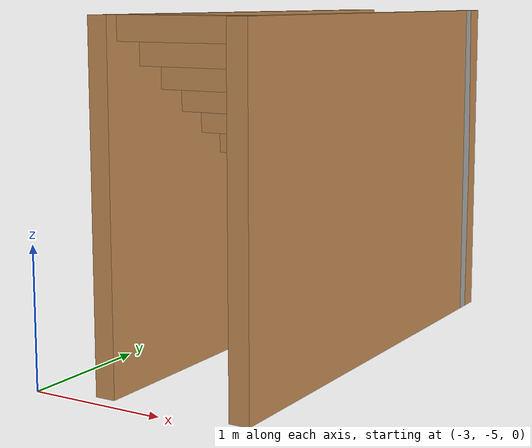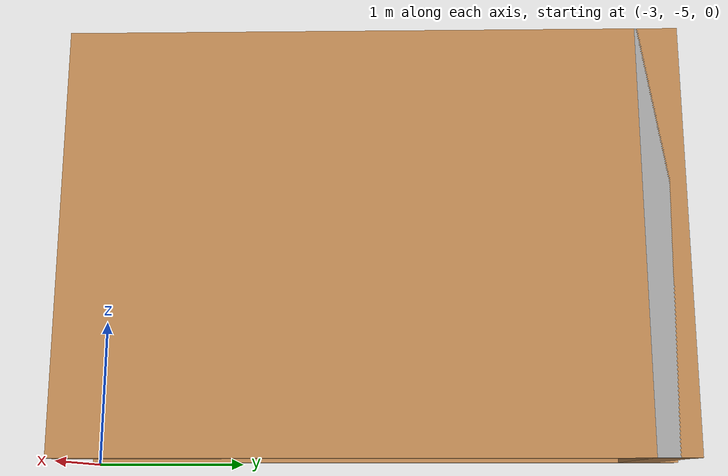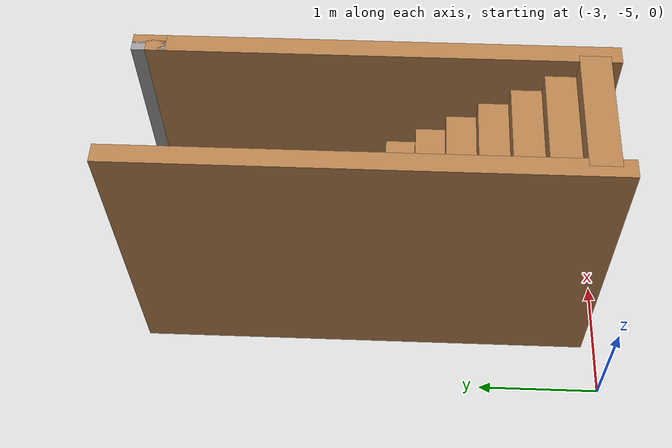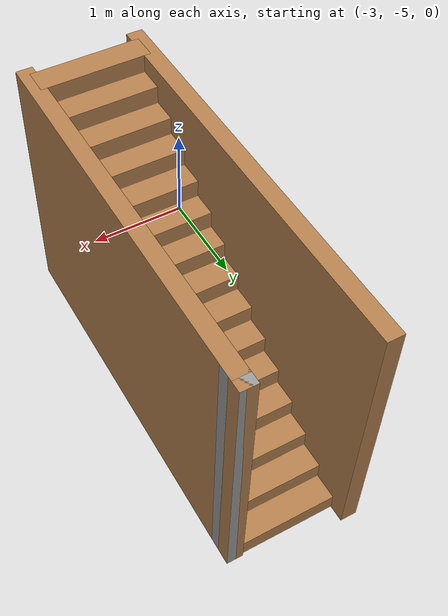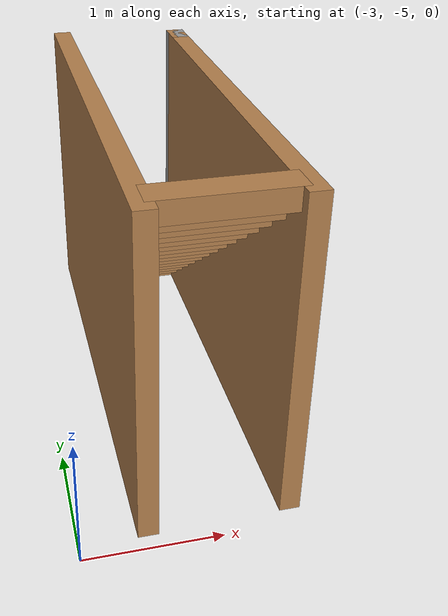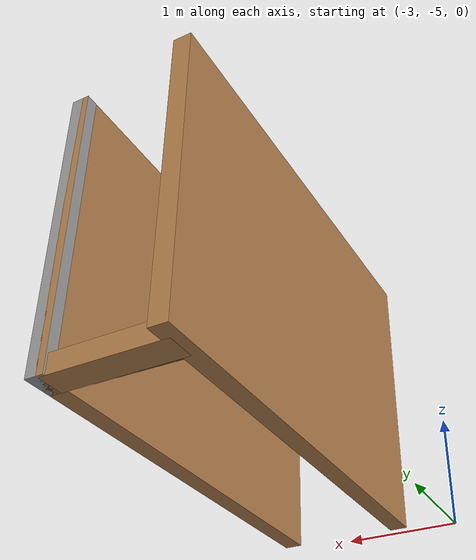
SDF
<?xml version='1.0'?>
<sdf version='1.6'>
  <model name='stairs'>
    <pose frame=''>-1.99778 -3.01611 0 0 -0 0</pose>
    <link name='Stairs_0'>
      <visual name='Stairs_0_Visual_0'>
        <pose frame=''>-0.00222 1.60945 0.083333 0 -0 0</pose>
        <geometry>
          <box>
            <size>1 0.233333 0.166667</size>
          </box>
        </geometry>
        <material>
          <script>
            <uri>file://media/materials/scripts/gazebo.material</uri>
            <name>Gazebo/Wood</name>
          </script>
          <ambient>1 1 1 1</ambient>
        </material>
        <meta>
          <layer>0</layer>
        </meta>
      </visual>
      <collision name='Stairs_0_Collision_0'>
        <geometry>
          <box>
            <size>1 0.233333 0.166667</size>
          </box>
        </geometry>
        <pose frame=''>-0.00222 1.60945 0.083333 0 -0 0</pose>
      </collision>
      <visual name='Stairs_0_Visual_1'>
        <pose frame=''>-0.00222 1.37611 0.25 0 -0 0</pose>
        <geometry>
          <box>
            <size>1 0.233333 0.166667</size>
          </box>
        </geometry>
        <material>
          <script>
            <uri>file://media/materials/scripts/gazebo.material</uri>
            <name>Gazebo/Wood</name>
          </script>
          <ambient>1 1 1 1</ambient>
        </material>
        <meta>
          <layer>0</layer>
        </meta>
      </visual>
      <collision name='Stairs_0_Collision_1'>
        <geometry>
          <box>
            <size>1 0.233333 0.166667</size>
          </box>
        </geometry>
        <pose frame=''>-0.00222 1.37611 0.25 0 -0 0</pose>
      </collision>
      <visual name='Stairs_0_Visual_2'>
        <pose frame=''>-0.00222 1.14278 0.416667 0 -0 0</pose>
        <geometry>
          <box>
            <size>1 0.233333 0.166667</size>
          </box>
        </geometry>
        <material>
          <script>
            <uri>file://media/materials/scripts/gazebo.material</uri>
            <name>Gazebo/Wood</name>
          </script>
          <ambient>1 1 1 1</ambient>
        </material>
        <meta>
          <layer>0</layer>
        </meta>
      </visual>
      <collision name='Stairs_0_Collision_2'>
        <geometry>
          <box>
            <size>1 0.233333 0.166667</size>
          </box>
        </geometry>
        <pose frame=''>-0.00222 1.14278 0.416667 0 -0 0</pose>
      </collision>
      <visual name='Stairs_0_Visual_3'>
        <pose frame=''>-0.00222 0.909445 0.583333 0 -0 0</pose>
        <geometry>
          <box>
            <size>1 0.233333 0.166667</size>
          </box>
        </geometry>
        <material>
          <script>
            <uri>file://media/materials/scripts/gazebo.material</uri>
            <name>Gazebo/Wood</name>
          </script>
          <ambient>1 1 1 1</ambient>
        </material>
        <meta>
          <layer>0</layer>
        </meta>
      </visual>
      <collision name='Stairs_0_Collision_3'>
        <geometry>
          <box>
            <size>1 0.233333 0.166667</size>
          </box>
        </geometry>
        <pose frame=''>-0.00222 0.909445 0.583333 0 -0 0</pose>
      </collision>
      <visual name='Stairs_0_Visual_4'>
        <pose frame=''>-0.00222 0.676112 0.75 0 -0 0</pose>
        <geometry>
          <box>
            <size>1 0.233333 0.166667</size>
          </box>
        </geometry>
        <material>
          <script>
            <uri>file://media/materials/scripts/gazebo.material</uri>
            <name>Gazebo/Wood</name>
          </script>
          <ambient>1 1 1 1</ambient>
        </material>
        <meta>
          <layer>0</layer>
        </meta>
      </visual>
      <collision name='Stairs_0_Collision_4'>
        <geometry>
          <box>
            <size>1 0.233333 0.166667</size>
          </box>
        </geometry>
        <pose frame=''>-0.00222 0.676112 0.75 0 -0 0</pose>
      </collision>
      <visual name='Stairs_0_Visual_5'>
        <pose frame=''>-0.00222 0.442778 0.916667 0 -0 0</pose>
        <geometry>
          <box>
            <size>1 0.233333 0.166667</size>
          </box>
        </geometry>
        <material>
          <script>
            <uri>file://media/materials/scripts/gazebo.material</uri>
            <name>Gazebo/Wood</name>
          </script>
          <ambient>1 1 1 1</ambient>
        </material>
        <meta>
          <layer>0</layer>
        </meta>
      </visual>
      <collision name='Stairs_0_Collision_5'>
        <geometry>
          <box>
            <size>1 0.233333 0.166667</size>
          </box>
        </geometry>
        <pose frame=''>-0.00222 0.442778 0.916667 0 -0 0</pose>
      </collision>
      <visual name='Stairs_0_Visual_6'>
        <pose frame=''>-0.00222 0.209445 1.08333 0 -0 0</pose>
        <geometry>
          <box>
            <size>1 0.233333 0.166667</size>
          </box>
        </geometry>
        <material>
          <script>
            <uri>file://media/materials/scripts/gazebo.material</uri>
            <name>Gazebo/Wood</name>
          </script>
          <ambient>1 1 1 1</ambient>
        </material>
        <meta>
          <layer>0</layer>
        </meta>
      </visual>
      <collision name='Stairs_0_Collision_6'>
        <geometry>
          <box>
            <size>1 0.233333 0.166667</size>
          </box>
        </geometry>
        <pose frame=''>-0.00222 0.209445 1.08333 0 -0 0</pose>
      </collision>
      <visual name='Stairs_0_Visual_7'>
        <pose frame=''>-0.00222 -0.023888 1.25 0 -0 0</pose>
        <geometry>
          <box>
            <size>1 0.233333 0.166667</size>
          </box>
        </geometry>
        <material>
          <script>
            <uri>file://media/materials/scripts/gazebo.material</uri>
            <name>Gazebo/Wood</name>
          </script>
          <ambient>1 1 1 1</ambient>
        </material>
        <meta>
          <layer>0</layer>
        </meta>
      </visual>
      <collision name='Stairs_0_Collision_7'>
        <geometry>
          <box>
            <size>1 0.233333 0.166667</size>
          </box>
        </geometry>
        <pose frame=''>-0.00222 -0.023888 1.25 0 -0 0</pose>
      </collision>
      <visual name='Stairs_0_Visual_8'>
        <pose frame=''>-0.00222 -0.257222 1.41667 0 -0 0</pose>
        <geometry>
          <box>
            <size>1 0.233333 0.166667</size>
          </box>
        </geometry>
        <material>
          <script>
            <uri>file://media/materials/scripts/gazebo.material</uri>
            <name>Gazebo/Wood</name>
          </script>
          <ambient>1 1 1 1</ambient>
        </material>
        <meta>
          <layer>0</layer>
        </meta>
      </visual>
      <collision name='Stairs_0_Collision_8'>
        <geometry>
          <box>
            <size>1 0.233333 0.166667</size>
          </box>
        </geometry>
        <pose frame=''>-0.00222 -0.257222 1.41667 0 -0 0</pose>
      </collision>
      <visual name='Stairs_0_Visual_9'>
        <pose frame=''>-0.00222 -0.490555 1.58333 0 -0 0</pose>
        <geometry>
          <box>
            <size>1 0.233333 0.166667</size>
          </box>
        </geometry>
        <material>
          <script>
            <uri>file://media/materials/scripts/gazebo.material</uri>
            <name>Gazebo/Wood</name>
          </script>
          <ambient>1 1 1 1</ambient>
        </material>
        <meta>
          <layer>0</layer>
        </meta>
      </visual>
      <collision name='Stairs_0_Collision_9'>
        <geometry>
          <box>
            <size>1 0.233333 0.166667</size>
          </box>
        </geometry>
        <pose frame=''>-0.00222 -0.490555 1.58333 0 -0 0</pose>
      </collision>
      <visual name='Stairs_0_Visual_10'>
        <pose frame=''>-0.00222 -0.723888 1.75 0 -0 0</pose>
        <geometry>
          <box>
            <size>1 0.233333 0.166667</size>
          </box>
        </geometry>
        <material>
          <script>
            <uri>file://media/materials/scripts/gazebo.material</uri>
            <name>Gazebo/Wood</name>
          </script>
          <ambient>1 1 1 1</ambient>
        </material>
        <meta>
          <layer>0</layer>
        </meta>
      </visual>
      <collision name='Stairs_0_Collision_10'>
        <geometry>
          <box>
            <size>1 0.233333 0.166667</size>
          </box>
        </geometry>
        <pose frame=''>-0.00222 -0.723888 1.75 0 -0 0</pose>
      </collision>
      <visual name='Stairs_0_Visual_11'>
        <pose frame=''>-0.00222 -0.957222 1.91667 0 -0 0</pose>
        <geometry>
          <box>
            <size>1 0.233333 0.166667</size>
          </box>
        </geometry>
        <material>
          <script>
            <uri>file://media/materials/scripts/gazebo.material</uri>
            <name>Gazebo/Wood</name>
          </script>
          <ambient>1 1 1 1</ambient>
        </material>
        <meta>
          <layer>0</layer>
        </meta>
      </visual>
      <collision name='Stairs_0_Collision_11'>
        <geometry>
          <box>
            <size>1 0.233333 0.166667</size>
          </box>
        </geometry>
        <pose frame=''>-0.00222 -0.957222 1.91667 0 -0 0</pose>
      </collision>
      <visual name='Stairs_0_Visual_12'>
        <pose frame=''>-0.00222 -1.19056 2.08333 0 -0 0</pose>
        <geometry>
          <box>
            <size>1 0.233333 0.166667</size>
          </box>
        </geometry>
        <material>
          <script>
            <uri>file://media/materials/scripts/gazebo.material</uri>
            <name>Gazebo/Wood</name>
          </script>
          <ambient>1 1 1 1</ambient>
        </material>
        <meta>
          <layer>0</layer>
        </meta>
      </visual>
      <collision name='Stairs_0_Collision_12'>
        <geometry>
          <box>
            <size>1 0.233333 0.166667</size>
          </box>
        </geometry>
        <pose frame=''>-0.00222 -1.19056 2.08333 0 -0 0</pose>
      </collision>
      <visual name='Stairs_0_Visual_13'>
        <pose frame=''>-0.00222 -1.42389 2.25 0 -0 0</pose>
        <geometry>
          <box>
            <size>1 0.233333 0.166667</size>
          </box>
        </geometry>
        <material>
          <script>
            <uri>file://media/materials/scripts/gazebo.material</uri>
            <name>Gazebo/Wood</name>
          </script>
          <ambient>1 1 1 1</ambient>
        </material>
        <meta>
          <layer>0</layer>
        </meta>
      </visual>
      <collision name='Stairs_0_Collision_13'>
        <geometry>
          <box>
            <size>1 0.233333 0.166667</size>
          </box>
        </geometry>
        <pose frame=''>-0.00222 -1.42389 2.25 0 -0 0</pose>
      </collision>
      <visual name='Stairs_0_Visual_14'>
        <pose frame=''>-0.00222 -1.65722 2.41667 0 -0 0</pose>
        <geometry>
          <box>
            <size>1 0.233333 0.166667</size>
          </box>
        </geometry>
        <material>
          <script>
            <uri>file://media/materials/scripts/gazebo.material</uri>
            <name>Gazebo/Wood</name>
          </script>
          <ambient>1 1 1 1</ambient>
        </material>
        <meta>
          <layer>0</layer>
        </meta>
      </visual>
      <collision name='Stairs_0_Collision_14'>
        <geometry>
          <box>
            <size>1 0.233333 0.166667</size>
          </box>
        </geometry>
        <pose frame=''>-0.00222 -1.65722 2.41667 0 -0 0</pose>
      </collision>
    </link>
    <link name='Wall_4'>
      <collision name='Wall_4_Collision'>
        <geometry>
          <box>
            <size>3.75 0.15 2.5</size>
          </box>
        </geometry>
        <pose frame=''>0 0 1.25 0 -0 0</pose>
      </collision>
      <visual name='Wall_4_Visual'>
        <pose frame=''>0 0 1.25 0 -0 0</pose>
        <geometry>
          <box>
            <size>3.75 0.15 2.5</size>
          </box>
        </geometry>
        <material>
          <script>
            <uri>file://media/materials/scripts/gazebo.material</uri>
            <name>Gazebo/Wood</name>
          </script>
          <ambient>1 1 1 1</ambient>
        </material>
        <meta>
          <layer>0</layer>
        </meta>
      </visual>
      <pose frame=''>-0.515 0 0 0 -0 1.5708</pose>
    </link>
    <link name='Wall_6'>
      <collision name='Wall_6_Collision'>
        <geometry>
          <box>
            <size>3.5 0.15 2.5</size>
          </box>
        </geometry>
        <pose frame=''>0 0 1.25 0 -0 0</pose>
      </collision>
      <visual name='Wall_6_Visual'>
        <pose frame=''>0 0 1.25 0 -0 0</pose>
        <geometry>
          <box>
            <size>3.5 0.15 2.5</size>
          </box>
        </geometry>
        <material>
          <script>
            <uri>file://media/materials/scripts/gazebo.material</uri>
            <name>Gazebo/Wood</name>
          </script>
          <ambient>1 1 1 1</ambient>
        </material>
        <meta>
          <layer>0</layer>
        </meta>
      </visual>
      <pose frame=''>0.515 -0.105 0 0 -0 1.5708</pose>
    </link>
    <link name='Wall_7'>
      <collision name='Wall_7_Collision'>
        <geometry>
          <box>
            <size>0.25 0.15 2.5</size>
          </box>
        </geometry>
        <pose frame=''>0 0 1.25 0 -0 0</pose>
      </collision>
      <visual name='Wall_7_Visual'>
        <pose frame=''>0 0 1.25 0 -0 0</pose>
        <geometry>
          <box>
            <size>0.25 0.15 2.5</size>
          </box>
        </geometry>
        <material>
          <script>
            <uri>file://media/materials/scripts/gazebo.material</uri>
            <name>Gazebo/Grey</name>
          </script>
          <ambient>1 1 1 1</ambient>
        </material>
        <meta>
          <layer>0</layer>
        </meta>
      </visual>
      <pose frame=''>0.515 1.62 0 0 -0 1.5708</pose>
    </link>
    <link name='Wall_8'>
      <collision name='Wall_8_Collision'>
        <geometry>
          <box>
            <size>0.25 0.15 2.5</size>
          </box>
        </geometry>
        <pose frame=''>0 0 1.25 0 -0 0</pose>
      </collision>
      <visual name='Wall_8_Visual'>
        <pose frame=''>0 0 1.25 0 -0 0</pose>
        <geometry>
          <box>
            <size>0.25 0.15 2.5</size>
          </box>
        </geometry>
        <material>
          <script>
            <uri>file://media/materials/scripts/gazebo.material</uri>
            <name>Gazebo/Wood</name>
          </script>
          <ambient>0.996078 0.47451 0.0196078 1</ambient>
        </material>
        <meta>
          <layer>0</layer>
        </meta>
      </visual>
      <pose frame=''>0.515 1.62 0 0 -0 -1.5708</pose>
    </link>
    <static>1</static>
  </model>
</sdf>
